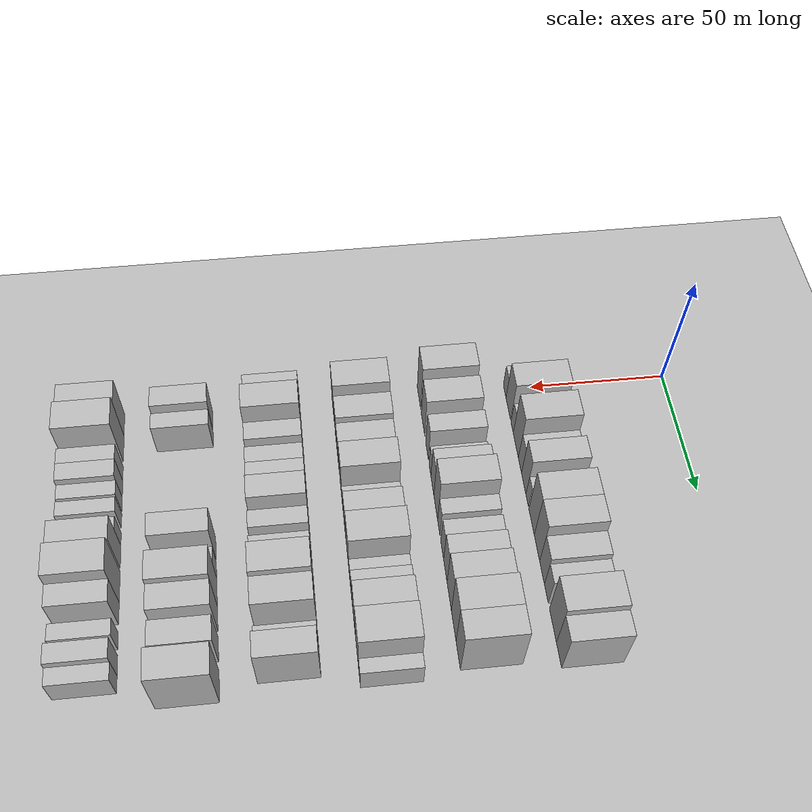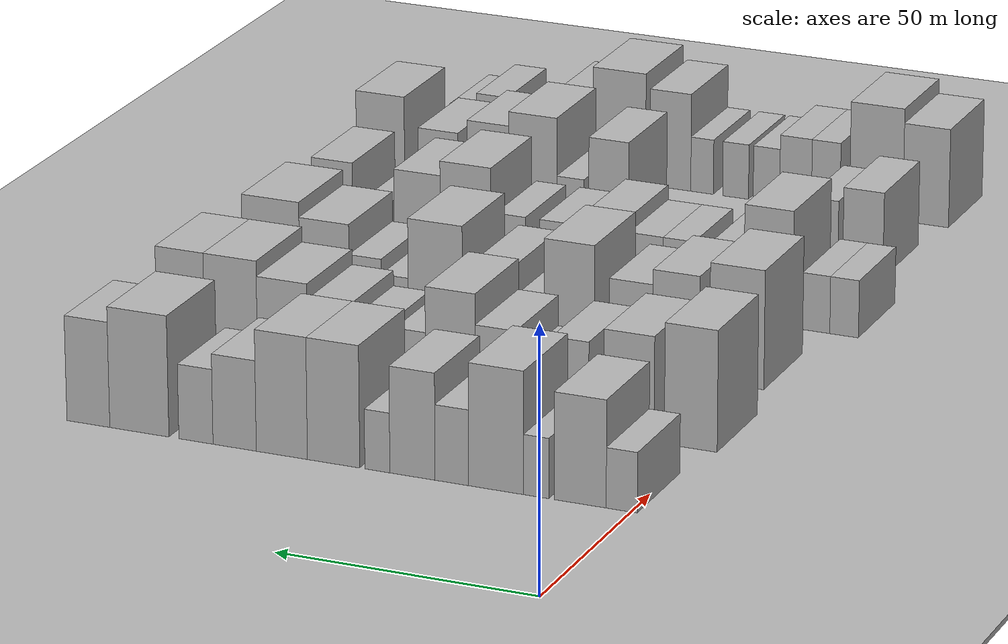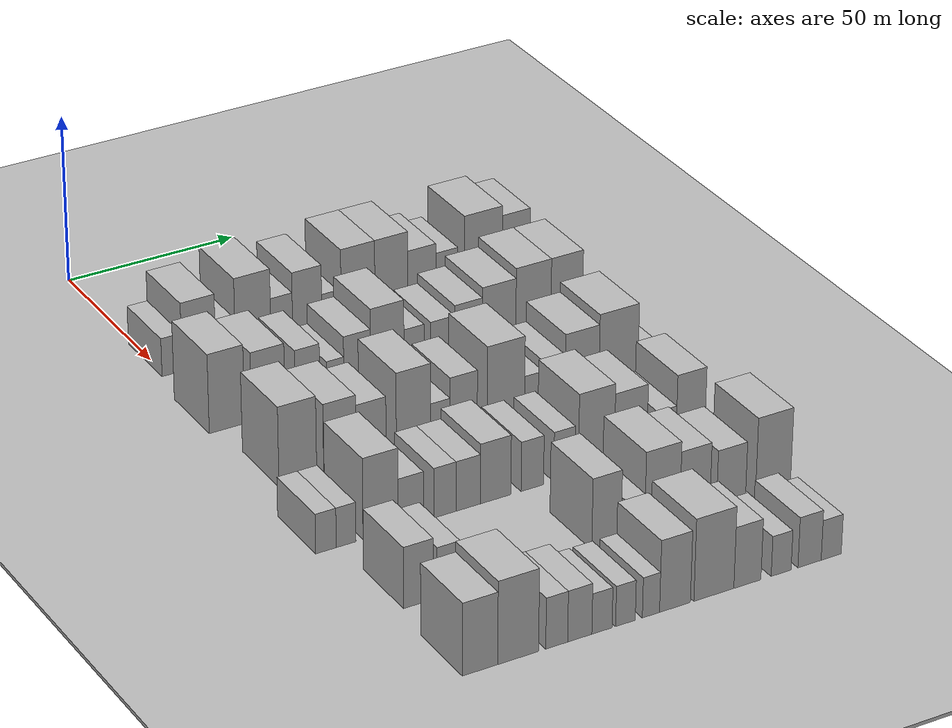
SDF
<sdf version="1.6">
 <world name="default">
  <include><name>ground_plane_1</name><uri>model://HANNAS_ground_plane</uri></include>
  <include>
   <name>ground_plane_2</name>
   <uri>model://HANNAS_ground_plane</uri>
   <pose>100 0 0  0 0 0</pose>
  </include>
  <model name="building_60">
   <static>1</static>
   <pose>50.0000 1.3358 0 0.000000 0.000000 0.000000</pose>
   <link name="link">
    <pose>0 0 6.00 0 0 0</pose>
    <collision name="collision"><geometry><box><size>20.0000 5.9601 12.0000</size></box></geometry></collision>
    <visual name="visual">
     <cast_shadows>0</cast_shadows>
     <geometry><box><size>20.0000 5.9601 12.0000</size></box></geometry>
     <material>
      <script>
       <uri>model://HANNAS_wall/materials/scripts</uri>
       <uri>model://HANNAS_wall/materials/textures</uri>
       <name>vrc/HANNAS_wall</name>
      </script>
     </material>
    </visual>
   </link>
  </model>
  <model name="building_61">
   <static>1</static>
   <pose>50.0000 9.3004 0 0.000000 0.000000 0.000000</pose>
   <link name="link">
    <pose>0 0 10.50 0 0 0</pose>
    <collision name="collision"><geometry><box><size>20.0000 9.9691 21.0000</size></box></geometry></collision>
    <visual name="visual">
     <cast_shadows>0</cast_shadows>
     <geometry><box><size>20.0000 9.9691 21.0000</size></box></geometry>
     <material>
      <script>
       <uri>model://HANNAS_wall/materials/scripts</uri>
       <uri>model://HANNAS_wall/materials/textures</uri>
       <name>vrc/HANNAS_wall</name>
      </script>
     </material>
    </visual>
   </link>
  </model>
  <model name="building_62">
   <static>1</static>
   <pose>50.0000 17.7154 0 0.000000 0.000000 0.000000</pose>
   <link name="link">
    <pose>0 0 6.00 0 0 0</pose>
    <collision name="collision"><geometry><box><size>20.0000 4.8610 12.0000</size></box></geometry></collision>
    <visual name="visual">
     <cast_shadows>0</cast_shadows>
     <geometry><box><size>20.0000 4.8610 12.0000</size></box></geometry>
     <material>
      <script>
       <uri>model://HANNAS_wall/materials/scripts</uri>
       <uri>model://HANNAS_wall/materials/textures</uri>
       <name>vrc/HANNAS_wall</name>
      </script>
     </material>
    </visual>
   </link>
  </model>
  <model name="building_63">
   <static>1</static>
   <pose>50.0000 25.4803 0 0.000000 0.000000 0.000000</pose>
   <link name="link">
    <pose>0 0 12.00 0 0 0</pose>
    <collision name="collision"><geometry><box><size>20.0000 10.6687 24.0000</size></box></geometry></collision>
    <visual name="visual">
     <cast_shadows>0</cast_shadows>
     <geometry><box><size>20.0000 10.6687 24.0000</size></box></geometry>
     <material>
      <script>
       <uri>model://HANNAS_wall/materials/scripts</uri>
       <uri>model://HANNAS_wall/materials/textures</uri>
       <name>vrc/HANNAS_wall</name>
      </script>
     </material>
    </visual>
   </link>
  </model>
  <model name="building_64">
   <static>1</static>
   <pose>50.0000 34.0839 0 0.000000 0.000000 0.000000</pose>
   <link name="link">
    <pose>0 0 7.50 0 0 0</pose>
    <collision name="collision"><geometry><box><size>20.0000 6.5386 15.0000</size></box></geometry></collision>
    <visual name="visual">
     <cast_shadows>0</cast_shadows>
     <geometry><box><size>20.0000 6.5386 15.0000</size></box></geometry>
     <material>
      <script>
       <uri>model://HANNAS_wall/materials/scripts</uri>
       <uri>model://HANNAS_wall/materials/textures</uri>
       <name>vrc/HANNAS_wall</name>
      </script>
     </material>
    </visual>
   </link>
  </model>
  <model name="building_65">
   <static>1</static>
   <pose>50.0000 41.7796 0 0.000000 0.000000 0.000000</pose>
   <link name="link">
    <pose>0 0 10.50 0 0 0</pose>
    <collision name="collision"><geometry><box><size>20.0000 8.8528 21.0000</size></box></geometry></collision>
    <visual name="visual">
     <cast_shadows>0</cast_shadows>
     <geometry><box><size>20.0000 8.8528 21.0000</size></box></geometry>
     <material>
      <script>
       <uri>model://HANNAS_wall/materials/scripts</uri>
       <uri>model://HANNAS_wall/materials/textures</uri>
       <name>vrc/HANNAS_wall</name>
      </script>
     </material>
    </visual>
   </link>
  </model>
  <model name="building_66">
   <static>1</static>
   <pose>50.0000 48.6634 0 0.000000 0.000000 0.000000</pose>
   <link name="link">
    <pose>0 0 6.00 0 0 0</pose>
    <collision name="collision"><geometry><box><size>20.0000 4.9147 12.0000</size></box></geometry></collision>
    <visual name="visual">
     <cast_shadows>0</cast_shadows>
     <geometry><box><size>20.0000 4.9147 12.0000</size></box></geometry>
     <material>
      <script>
       <uri>model://HANNAS_wall/materials/scripts</uri>
       <uri>model://HANNAS_wall/materials/textures</uri>
       <name>vrc/HANNAS_wall</name>
      </script>
     </material>
    </visual>
   </link>
  </model>
  <model name="building_67">
   <static>1</static>
   <pose>50.0000 57.2903 0 0.000000 0.000000 0.000000</pose>
   <link name="link">
    <pose>0 0 12.00 0 0 0</pose>
    <collision name="collision"><geometry><box><size>20.0000 10.3391 24.0000</size></box></geometry></collision>
    <visual name="visual">
     <cast_shadows>0</cast_shadows>
     <geometry><box><size>20.0000 10.3391 24.0000</size></box></geometry>
     <material>
      <script>
       <uri>model://HANNAS_wall/materials/scripts</uri>
       <uri>model://HANNAS_wall/materials/textures</uri>
       <name>vrc/HANNAS_wall</name>
      </script>
     </material>
    </visual>
   </link>
  </model>
  <model name="building_68">
   <static>1</static>
   <pose>50.0000 67.5436 0 0.000000 0.000000 0.000000</pose>
   <link name="link">
    <pose>0 0 12.00 0 0 0</pose>
    <collision name="collision"><geometry><box><size>20.0000 10.1675 24.0000</size></box></geometry></collision>
    <visual name="visual">
     <cast_shadows>0</cast_shadows>
     <geometry><box><size>20.0000 10.1675 24.0000</size></box></geometry>
     <material>
      <script>
       <uri>model://HANNAS_wall/materials/scripts</uri>
       <uri>model://HANNAS_wall/materials/textures</uri>
       <name>vrc/HANNAS_wall</name>
      </script>
     </material>
    </visual>
   </link>
  </model>
  <model name="building_69">
   <static>1</static>
   <pose>50.0000 76.9611 0 0.000000 0.000000 0.000000</pose>
   <link name="link">
    <pose>0 0 9.00 0 0 0</pose>
    <collision name="collision"><geometry><box><size>20.0000 8.6673 18.0000</size></box></geometry></collision>
    <visual name="visual">
     <cast_shadows>0</cast_shadows>
     <geometry><box><size>20.0000 8.6673 18.0000</size></box></geometry>
     <material>
      <script>
       <uri>model://HANNAS_wall/materials/scripts</uri>
       <uri>model://HANNAS_wall/materials/textures</uri>
       <name>vrc/HANNAS_wall</name>
      </script>
     </material>
    </visual>
   </link>
  </model>
  <model name="building_70">
   <static>1</static>
   <pose>50.0000 84.7303 0 0.000000 0.000000 0.000000</pose>
   <link name="link">
    <pose>0 0 7.50 0 0 0</pose>
    <collision name="collision"><geometry><box><size>20.0000 6.8712 15.0000</size></box></geometry></collision>
    <visual name="visual">
     <cast_shadows>0</cast_shadows>
     <geometry><box><size>20.0000 6.8712 15.0000</size></box></geometry>
     <material>
      <script>
       <uri>model://HANNAS_wall/materials/scripts</uri>
       <uri>model://HANNAS_wall/materials/textures</uri>
       <name>vrc/HANNAS_wall</name>
      </script>
     </material>
    </visual>
   </link>
  </model>
  <model name="building_71">
   <static>1</static>
   <pose>50.0000 96.1594 0 0.000000 0.000000 0.000000</pose>
   <link name="link">
    <pose>0 0 12.00 0 0 0</pose>
    <collision name="collision"><geometry><box><size>20.0000 11.9871 24.0000</size></box></geometry></collision>
    <visual name="visual">
     <cast_shadows>0</cast_shadows>
     <geometry><box><size>20.0000 11.9871 24.0000</size></box></geometry>
     <material>
      <script>
       <uri>model://HANNAS_wall/materials/scripts</uri>
       <uri>model://HANNAS_wall/materials/textures</uri>
       <name>vrc/HANNAS_wall</name>
      </script>
     </material>
    </visual>
   </link>
  </model>
  <model name="building_72">
   <static>1</static>
   <pose>50.0000 106.5180 0 0.000000 0.000000 0.000000</pose>
   <link name="link">
    <pose>0 0 10.50 0 0 0</pose>
    <collision name="collision"><geometry><box><size>20.0000 8.7301 21.0000</size></box></geometry></collision>
    <visual name="visual">
     <cast_shadows>0</cast_shadows>
     <geometry><box><size>20.0000 8.7301 21.0000</size></box></geometry>
     <material>
      <script>
       <uri>model://HANNAS_wall/materials/scripts</uri>
       <uri>model://HANNAS_wall/materials/textures</uri>
       <name>vrc/HANNAS_wall</name>
      </script>
     </material>
    </visual>
   </link>
  </model>
  <model name="building_177">
   <static>1</static>
   <pose>82.0000 1.0692 0 0.000000 0.000000 0.000000</pose>
   <link name="link">
    <pose>0 0 12.00 0 0 0</pose>
    <collision name="collision"><geometry><box><size>20.0000 10.2635 24.0000</size></box></geometry></collision>
    <visual name="visual">
     <cast_shadows>0</cast_shadows>
     <geometry><box><size>20.0000 10.2635 24.0000</size></box></geometry>
     <material>
      <script>
       <uri>model://HANNAS_wall/materials/scripts</uri>
       <uri>model://HANNAS_wall/materials/textures</uri>
       <name>vrc/HANNAS_wall</name>
      </script>
     </material>
    </visual>
   </link>
  </model>
  <model name="building_178">
   <static>1</static>
   <pose>82.0000 13.1112 0 0.000000 0.000000 0.000000</pose>
   <link name="link">
    <pose>0 0 10.50 0 0 0</pose>
    <collision name="collision"><geometry><box><size>20.0000 9.8205 21.0000</size></box></geometry></collision>
    <visual name="visual">
     <cast_shadows>0</cast_shadows>
     <geometry><box><size>20.0000 9.8205 21.0000</size></box></geometry>
     <material>
      <script>
       <uri>model://HANNAS_wall/materials/scripts</uri>
       <uri>model://HANNAS_wall/materials/textures</uri>
       <name>vrc/HANNAS_wall</name>
      </script>
     </material>
    </visual>
   </link>
  </model>
  <model name="building_179">
   <static>1</static>
   <pose>82.0000 24.6729 0 0.000000 0.000000 0.000000</pose>
   <link name="link">
    <pose>0 0 9.00 0 0 0</pose>
    <collision name="collision"><geometry><box><size>20.0000 7.3029 18.0000</size></box></geometry></collision>
    <visual name="visual">
     <cast_shadows>0</cast_shadows>
     <geometry><box><size>20.0000 7.3029 18.0000</size></box></geometry>
     <material>
      <script>
       <uri>model://HANNAS_wall/materials/scripts</uri>
       <uri>model://HANNAS_wall/materials/textures</uri>
       <name>vrc/HANNAS_wall</name>
      </script>
     </material>
    </visual>
   </link>
  </model>
  <model name="building_180">
   <static>1</static>
   <pose>82.0000 32.8890 0 0.000000 0.000000 0.000000</pose>
   <link name="link">
    <pose>0 0 6.00 0 0 0</pose>
    <collision name="collision"><geometry><box><size>20.0000 5.1294 12.0000</size></box></geometry></collision>
    <visual name="visual">
     <cast_shadows>0</cast_shadows>
     <geometry><box><size>20.0000 5.1294 12.0000</size></box></geometry>
     <material>
      <script>
       <uri>model://HANNAS_wall/materials/scripts</uri>
       <uri>model://HANNAS_wall/materials/textures</uri>
       <name>vrc/HANNAS_wall</name>
      </script>
     </material>
    </visual>
   </link>
  </model>
  <model name="building_181">
   <static>1</static>
   <pose>82.0000 39.4639 0 0.000000 0.000000 0.000000</pose>
   <link name="link">
    <pose>0 0 9.00 0 0 0</pose>
    <collision name="collision"><geometry><box><size>20.0000 8.0204 18.0000</size></box></geometry></collision>
    <visual name="visual">
     <cast_shadows>0</cast_shadows>
     <geometry><box><size>20.0000 8.0204 18.0000</size></box></geometry>
     <material>
      <script>
       <uri>model://HANNAS_wall/materials/scripts</uri>
       <uri>model://HANNAS_wall/materials/textures</uri>
       <name>vrc/HANNAS_wall</name>
      </script>
     </material>
    </visual>
   </link>
  </model>
  <model name="building_182">
   <static>1</static>
   <pose>82.0000 48.4613 0 0.000000 0.000000 0.000000</pose>
   <link name="link">
    <pose>0 0 12.00 0 0 0</pose>
    <collision name="collision"><geometry><box><size>20.0000 9.9743 24.0000</size></box></geometry></collision>
    <visual name="visual">
     <cast_shadows>0</cast_shadows>
     <geometry><box><size>20.0000 9.9743 24.0000</size></box></geometry>
     <material>
      <script>
       <uri>model://HANNAS_wall/materials/scripts</uri>
       <uri>model://HANNAS_wall/materials/textures</uri>
       <name>vrc/HANNAS_wall</name>
      </script>
     </material>
    </visual>
   </link>
  </model>
  <model name="building_183">
   <static>1</static>
   <pose>82.0000 56.4696 0 0.000000 0.000000 0.000000</pose>
   <link name="link">
    <pose>0 0 7.50 0 0 0</pose>
    <collision name="collision"><geometry><box><size>20.0000 6.0425 15.0000</size></box></geometry></collision>
    <visual name="visual">
     <cast_shadows>0</cast_shadows>
     <geometry><box><size>20.0000 6.0425 15.0000</size></box></geometry>
     <material>
      <script>
       <uri>model://HANNAS_wall/materials/scripts</uri>
       <uri>model://HANNAS_wall/materials/textures</uri>
       <name>vrc/HANNAS_wall</name>
      </script>
     </material>
    </visual>
   </link>
  </model>
  <model name="building_184">
   <static>1</static>
   <pose>82.0000 65.1560 0 0.000000 0.000000 0.000000</pose>
   <link name="link">
    <pose>0 0 7.50 0 0 0</pose>
    <collision name="collision"><geometry><box><size>20.0000 7.3303 15.0000</size></box></geometry></collision>
    <visual name="visual">
     <cast_shadows>0</cast_shadows>
     <geometry><box><size>20.0000 7.3303 15.0000</size></box></geometry>
     <material>
      <script>
       <uri>model://HANNAS_wall/materials/scripts</uri>
       <uri>model://HANNAS_wall/materials/textures</uri>
       <name>vrc/HANNAS_wall</name>
      </script>
     </material>
    </visual>
   </link>
  </model>
  <model name="building_185">
   <static>1</static>
   <pose>82.0000 73.0448 0 0.000000 0.000000 0.000000</pose>
   <link name="link">
    <pose>0 0 9.00 0 0 0</pose>
    <collision name="collision"><geometry><box><size>20.0000 8.4473 18.0000</size></box></geometry></collision>
    <visual name="visual">
     <cast_shadows>0</cast_shadows>
     <geometry><box><size>20.0000 8.4473 18.0000</size></box></geometry>
     <material>
      <script>
       <uri>model://HANNAS_wall/materials/scripts</uri>
       <uri>model://HANNAS_wall/materials/textures</uri>
       <name>vrc/HANNAS_wall</name>
      </script>
     </material>
    </visual>
   </link>
  </model>
  <model name="building_186">
   <static>1</static>
   <pose>82.0000 82.4080 0 0.000000 0.000000 0.000000</pose>
   <link name="link">
    <pose>0 0 10.50 0 0 0</pose>
    <collision name="collision"><geometry><box><size>20.0000 10.2791 21.0000</size></box></geometry></collision>
    <visual name="visual">
     <cast_shadows>0</cast_shadows>
     <geometry><box><size>20.0000 10.2791 21.0000</size></box></geometry>
     <material>
      <script>
       <uri>model://HANNAS_wall/materials/scripts</uri>
       <uri>model://HANNAS_wall/materials/textures</uri>
       <name>vrc/HANNAS_wall</name>
      </script>
     </material>
    </visual>
   </link>
  </model>
  <model name="building_187">
   <static>1</static>
   <pose>82.0000 92.9784 0 0.000000 0.000000 0.000000</pose>
   <link name="link">
    <pose>0 0 12.00 0 0 0</pose>
    <collision name="collision"><geometry><box><size>20.0000 10.8617 24.0000</size></box></geometry></collision>
    <visual name="visual">
     <cast_shadows>0</cast_shadows>
     <geometry><box><size>20.0000 10.8617 24.0000</size></box></geometry>
     <material>
      <script>
       <uri>model://HANNAS_wall/materials/scripts</uri>
       <uri>model://HANNAS_wall/materials/textures</uri>
       <name>vrc/HANNAS_wall</name>
      </script>
     </material>
    </visual>
   </link>
  </model>
  <model name="building_188">
   <static>1</static>
   <pose>82.0000 103.3488 0 0.000000 0.000000 0.000000</pose>
   <link name="link">
    <pose>0 0 12.00 0 0 0</pose>
    <collision name="collision"><geometry><box><size>20.0000 9.8790 24.0000</size></box></geometry></collision>
    <visual name="visual">
     <cast_shadows>0</cast_shadows>
     <geometry><box><size>20.0000 9.8790 24.0000</size></box></geometry>
     <material>
      <script>
       <uri>model://HANNAS_wall/materials/scripts</uri>
       <uri>model://HANNAS_wall/materials/textures</uri>
       <name>vrc/HANNAS_wall</name>
      </script>
     </material>
    </visual>
   </link>
  </model>
  <model name="building_294">
   <static>1</static>
   <pose>114.0000 4.7208 0 0.000000 0.000000 0.000000</pose>
   <link name="link">
    <pose>0 0 12.00 0 0 0</pose>
    <collision name="collision"><geometry><box><size>20.0000 10.8109 24.0000</size></box></geometry></collision>
    <visual name="visual">
     <cast_shadows>0</cast_shadows>
     <geometry><box><size>20.0000 10.8109 24.0000</size></box></geometry>
     <material>
      <script>
       <uri>model://HANNAS_wall/materials/scripts</uri>
       <uri>model://HANNAS_wall/materials/textures</uri>
       <name>vrc/HANNAS_wall</name>
      </script>
     </material>
    </visual>
   </link>
  </model>
  <model name="building_295">
   <static>1</static>
   <pose>114.0000 16.8102 0 0.000000 0.000000 0.000000</pose>
   <link name="link">
    <pose>0 0 10.50 0 0 0</pose>
    <collision name="collision"><geometry><box><size>20.0000 9.3680 21.0000</size></box></geometry></collision>
    <visual name="visual">
     <cast_shadows>0</cast_shadows>
     <geometry><box><size>20.0000 9.3680 21.0000</size></box></geometry>
     <material>
      <script>
       <uri>model://HANNAS_wall/materials/scripts</uri>
       <uri>model://HANNAS_wall/materials/textures</uri>
       <name>vrc/HANNAS_wall</name>
      </script>
     </material>
    </visual>
   </link>
  </model>
  <model name="building_296">
   <static>1</static>
   <pose>114.0000 25.8664 0 0.000000 0.000000 0.000000</pose>
   <link name="link">
    <pose>0 0 9.00 0 0 0</pose>
    <collision name="collision"><geometry><box><size>20.0000 8.7443 18.0000</size></box></geometry></collision>
    <visual name="visual">
     <cast_shadows>0</cast_shadows>
     <geometry><box><size>20.0000 8.7443 18.0000</size></box></geometry>
     <material>
      <script>
       <uri>model://HANNAS_wall/materials/scripts</uri>
       <uri>model://HANNAS_wall/materials/textures</uri>
       <name>vrc/HANNAS_wall</name>
      </script>
     </material>
    </visual>
   </link>
  </model>
  <model name="building_297">
   <static>1</static>
   <pose>114.0000 38.3132 0 0.000000 0.000000 0.000000</pose>
   <link name="link">
    <pose>0 0 12.00 0 0 0</pose>
    <collision name="collision"><geometry><box><size>20.0000 10.1492 24.0000</size></box></geometry></collision>
    <visual name="visual">
     <cast_shadows>0</cast_shadows>
     <geometry><box><size>20.0000 10.1492 24.0000</size></box></geometry>
     <material>
      <script>
       <uri>model://HANNAS_wall/materials/scripts</uri>
       <uri>model://HANNAS_wall/materials/textures</uri>
       <name>vrc/HANNAS_wall</name>
      </script>
     </material>
    </visual>
   </link>
  </model>
  <model name="building_298">
   <static>1</static>
   <pose>114.0000 46.2140 0 0.000000 0.000000 0.000000</pose>
   <link name="link">
    <pose>0 0 6.00 0 0 0</pose>
    <collision name="collision"><geometry><box><size>20.0000 5.6524 12.0000</size></box></geometry></collision>
    <visual name="visual">
     <cast_shadows>0</cast_shadows>
     <geometry><box><size>20.0000 5.6524 12.0000</size></box></geometry>
     <material>
      <script>
       <uri>model://HANNAS_wall/materials/scripts</uri>
       <uri>model://HANNAS_wall/materials/textures</uri>
       <name>vrc/HANNAS_wall</name>
      </script>
     </material>
    </visual>
   </link>
  </model>
  <model name="building_299">
   <static>1</static>
   <pose>114.0000 53.0847 0 0.000000 0.000000 0.000000</pose>
   <link name="link">
    <pose>0 0 9.00 0 0 0</pose>
    <collision name="collision"><geometry><box><size>20.0000 8.0892 18.0000</size></box></geometry></collision>
    <visual name="visual">
     <cast_shadows>0</cast_shadows>
     <geometry><box><size>20.0000 8.0892 18.0000</size></box></geometry>
     <material>
      <script>
       <uri>model://HANNAS_wall/materials/scripts</uri>
       <uri>model://HANNAS_wall/materials/textures</uri>
       <name>vrc/HANNAS_wall</name>
      </script>
     </material>
    </visual>
   </link>
  </model>
  <model name="building_300">
   <static>1</static>
   <pose>114.0000 65.7095 0 0.000000 0.000000 0.000000</pose>
   <link name="link">
    <pose>0 0 12.00 0 0 0</pose>
    <collision name="collision"><geometry><box><size>20.0000 11.1603 24.0000</size></box></geometry></collision>
    <visual name="visual">
     <cast_shadows>0</cast_shadows>
     <geometry><box><size>20.0000 11.1603 24.0000</size></box></geometry>
     <material>
      <script>
       <uri>model://HANNAS_wall/materials/scripts</uri>
       <uri>model://HANNAS_wall/materials/textures</uri>
       <name>vrc/HANNAS_wall</name>
      </script>
     </material>
    </visual>
   </link>
  </model>
  <model name="building_301">
   <static>1</static>
   <pose>114.0000 74.0676 0 0.000000 0.000000 0.000000</pose>
   <link name="link">
    <pose>0 0 6.00 0 0 0</pose>
    <collision name="collision"><geometry><box><size>20.0000 5.5559 12.0000</size></box></geometry></collision>
    <visual name="visual">
     <cast_shadows>0</cast_shadows>
     <geometry><box><size>20.0000 5.5559 12.0000</size></box></geometry>
     <material>
      <script>
       <uri>model://HANNAS_wall/materials/scripts</uri>
       <uri>model://HANNAS_wall/materials/textures</uri>
       <name>vrc/HANNAS_wall</name>
      </script>
     </material>
    </visual>
   </link>
  </model>
  <model name="building_302">
   <static>1</static>
   <pose>114.0000 80.1811 0 0.000000 0.000000 0.000000</pose>
   <link name="link">
    <pose>0 0 7.50 0 0 0</pose>
    <collision name="collision"><geometry><box><size>20.0000 6.6711 15.0000</size></box></geometry></collision>
    <visual name="visual">
     <cast_shadows>0</cast_shadows>
     <geometry><box><size>20.0000 6.6711 15.0000</size></box></geometry>
     <material>
      <script>
       <uri>model://HANNAS_wall/materials/scripts</uri>
       <uri>model://HANNAS_wall/materials/textures</uri>
       <name>vrc/HANNAS_wall</name>
      </script>
     </material>
    </visual>
   </link>
  </model>
  <model name="building_303">
   <static>1</static>
   <pose>114.0000 88.6898 0 0.000000 0.000000 0.000000</pose>
   <link name="link">
    <pose>0 0 10.50 0 0 0</pose>
    <collision name="collision"><geometry><box><size>20.0000 10.3462 21.0000</size></box></geometry></collision>
    <visual name="visual">
     <cast_shadows>0</cast_shadows>
     <geometry><box><size>20.0000 10.3462 21.0000</size></box></geometry>
     <material>
      <script>
       <uri>model://HANNAS_wall/materials/scripts</uri>
       <uri>model://HANNAS_wall/materials/textures</uri>
       <name>vrc/HANNAS_wall</name>
      </script>
     </material>
    </visual>
   </link>
  </model>
  <model name="building_304">
   <static>1</static>
   <pose>114.0000 99.8601 0 0.000000 0.000000 0.000000</pose>
   <link name="link">
    <pose>0 0 12.00 0 0 0</pose>
    <collision name="collision"><geometry><box><size>20.0000 11.9943 24.0000</size></box></geometry></collision>
    <visual name="visual">
     <cast_shadows>0</cast_shadows>
     <geometry><box><size>20.0000 11.9943 24.0000</size></box></geometry>
     <material>
      <script>
       <uri>model://HANNAS_wall/materials/scripts</uri>
       <uri>model://HANNAS_wall/materials/textures</uri>
       <name>vrc/HANNAS_wall</name>
      </script>
     </material>
    </visual>
   </link>
  </model>
  <model name="building_305">
   <static>1</static>
   <pose>114.0000 108.3665 0 0.000000 0.000000 0.000000</pose>
   <link name="link">
    <pose>0 0 6.00 0 0 0</pose>
    <collision name="collision"><geometry><box><size>20.0000 5.0187 12.0000</size></box></geometry></collision>
    <visual name="visual">
     <cast_shadows>0</cast_shadows>
     <geometry><box><size>20.0000 5.0187 12.0000</size></box></geometry>
     <material>
      <script>
       <uri>model://HANNAS_wall/materials/scripts</uri>
       <uri>model://HANNAS_wall/materials/textures</uri>
       <name>vrc/HANNAS_wall</name>
      </script>
     </material>
    </visual>
   </link>
  </model>
  <model name="building_416">
   <static>1</static>
   <pose>146.0000 -4.5435 0 0.000000 0.000000 0.000000</pose>
   <link name="link">
    <pose>0 0 6.00 0 0 0</pose>
    <collision name="collision"><geometry><box><size>20.0000 5.7785 12.0000</size></box></geometry></collision>
    <visual name="visual">
     <cast_shadows>0</cast_shadows>
     <geometry><box><size>20.0000 5.7785 12.0000</size></box></geometry>
     <material>
      <script>
       <uri>model://HANNAS_wall/materials/scripts</uri>
       <uri>model://HANNAS_wall/materials/textures</uri>
       <name>vrc/HANNAS_wall</name>
      </script>
     </material>
    </visual>
   </link>
  </model>
  <model name="building_417">
   <static>1</static>
   <pose>146.0000 1.1185 0 0.000000 0.000000 0.000000</pose>
   <link name="link">
    <pose>0 0 6.00 0 0 0</pose>
    <collision name="collision"><geometry><box><size>20.0000 5.5456 12.0000</size></box></geometry></collision>
    <visual name="visual">
     <cast_shadows>0</cast_shadows>
     <geometry><box><size>20.0000 5.5456 12.0000</size></box></geometry>
     <material>
      <script>
       <uri>model://HANNAS_wall/materials/scripts</uri>
       <uri>model://HANNAS_wall/materials/textures</uri>
       <name>vrc/HANNAS_wall</name>
      </script>
     </material>
    </visual>
   </link>
  </model>
  <model name="building_418">
   <static>1</static>
   <pose>146.0000 10.8607 0 0.000000 0.000000 0.000000</pose>
   <link name="link">
    <pose>0 0 12.00 0 0 0</pose>
    <collision name="collision"><geometry><box><size>20.0000 9.9389 24.0000</size></box></geometry></collision>
    <visual name="visual">
     <cast_shadows>0</cast_shadows>
     <geometry><box><size>20.0000 9.9389 24.0000</size></box></geometry>
     <material>
      <script>
       <uri>model://HANNAS_wall/materials/scripts</uri>
       <uri>model://HANNAS_wall/materials/textures</uri>
       <name>vrc/HANNAS_wall</name>
      </script>
     </material>
    </visual>
   </link>
  </model>
  <model name="building_419">
   <static>1</static>
   <pose>146.0000 19.4415 0 0.000000 0.000000 0.000000</pose>
   <link name="link">
    <pose>0 0 7.50 0 0 0</pose>
    <collision name="collision"><geometry><box><size>20.0000 7.2227 15.0000</size></box></geometry></collision>
    <visual name="visual">
     <cast_shadows>0</cast_shadows>
     <geometry><box><size>20.0000 7.2227 15.0000</size></box></geometry>
     <material>
      <script>
       <uri>model://HANNAS_wall/materials/scripts</uri>
       <uri>model://HANNAS_wall/materials/textures</uri>
       <name>vrc/HANNAS_wall</name>
      </script>
     </material>
    </visual>
   </link>
  </model>
  <model name="building_420">
   <static>1</static>
   <pose>146.0000 29.2246 0 0.000000 0.000000 0.000000</pose>
   <link name="link">
    <pose>0 0 7.50 0 0 0</pose>
    <collision name="collision"><geometry><box><size>20.0000 6.3434 15.0000</size></box></geometry></collision>
    <visual name="visual">
     <cast_shadows>0</cast_shadows>
     <geometry><box><size>20.0000 6.3434 15.0000</size></box></geometry>
     <material>
      <script>
       <uri>model://HANNAS_wall/materials/scripts</uri>
       <uri>model://HANNAS_wall/materials/textures</uri>
       <name>vrc/HANNAS_wall</name>
      </script>
     </material>
    </visual>
   </link>
  </model>
  <model name="building_421">
   <static>1</static>
   <pose>146.0000 35.9295 0 0.000000 0.000000 0.000000</pose>
   <link name="link">
    <pose>0 0 7.50 0 0 0</pose>
    <collision name="collision"><geometry><box><size>20.0000 7.0665 15.0000</size></box></geometry></collision>
    <visual name="visual">
     <cast_shadows>0</cast_shadows>
     <geometry><box><size>20.0000 7.0665 15.0000</size></box></geometry>
     <material>
      <script>
       <uri>model://HANNAS_wall/materials/scripts</uri>
       <uri>model://HANNAS_wall/materials/textures</uri>
       <name>vrc/HANNAS_wall</name>
      </script>
     </material>
    </visual>
   </link>
  </model>
  <model name="building_422">
   <static>1</static>
   <pose>146.0000 43.9070 0 0.000000 0.000000 0.000000</pose>
   <link name="link">
    <pose>0 0 9.00 0 0 0</pose>
    <collision name="collision"><geometry><box><size>20.0000 8.8885 18.0000</size></box></geometry></collision>
    <visual name="visual">
     <cast_shadows>0</cast_shadows>
     <geometry><box><size>20.0000 8.8885 18.0000</size></box></geometry>
     <material>
      <script>
       <uri>model://HANNAS_wall/materials/scripts</uri>
       <uri>model://HANNAS_wall/materials/textures</uri>
       <name>vrc/HANNAS_wall</name>
      </script>
     </material>
    </visual>
   </link>
  </model>
  <model name="building_423">
   <static>1</static>
   <pose>146.0000 54.6436 0 0.000000 0.000000 0.000000</pose>
   <link name="link">
    <pose>0 0 7.50 0 0 0</pose>
    <collision name="collision"><geometry><box><size>20.0000 6.5847 15.0000</size></box></geometry></collision>
    <visual name="visual">
     <cast_shadows>0</cast_shadows>
     <geometry><box><size>20.0000 6.5847 15.0000</size></box></geometry>
     <material>
      <script>
       <uri>model://HANNAS_wall/materials/scripts</uri>
       <uri>model://HANNAS_wall/materials/textures</uri>
       <name>vrc/HANNAS_wall</name>
      </script>
     </material>
    </visual>
   </link>
  </model>
  <model name="building_424">
   <static>1</static>
   <pose>146.0000 64.0469 0 0.000000 0.000000 0.000000</pose>
   <link name="link">
    <pose>0 0 7.50 0 0 0</pose>
    <collision name="collision"><geometry><box><size>20.0000 6.2219 15.0000</size></box></geometry></collision>
    <visual name="visual">
     <cast_shadows>0</cast_shadows>
     <geometry><box><size>20.0000 6.2219 15.0000</size></box></geometry>
     <material>
      <script>
       <uri>model://HANNAS_wall/materials/scripts</uri>
       <uri>model://HANNAS_wall/materials/textures</uri>
       <name>vrc/HANNAS_wall</name>
      </script>
     </material>
    </visual>
   </link>
  </model>
  <model name="building_425">
   <static>1</static>
   <pose>146.0000 73.5076 0 0.000000 0.000000 0.000000</pose>
   <link name="link">
    <pose>0 0 12.00 0 0 0</pose>
    <collision name="collision"><geometry><box><size>20.0000 10.6996 24.0000</size></box></geometry></collision>
    <visual name="visual">
     <cast_shadows>0</cast_shadows>
     <geometry><box><size>20.0000 10.6996 24.0000</size></box></geometry>
     <material>
      <script>
       <uri>model://HANNAS_wall/materials/scripts</uri>
       <uri>model://HANNAS_wall/materials/textures</uri>
       <name>vrc/HANNAS_wall</name>
      </script>
     </material>
    </visual>
   </link>
  </model>
  <model name="building_426">
   <static>1</static>
   <pose>146.0000 83.7499 0 0.000000 0.000000 0.000000</pose>
   <link name="link">
    <pose>0 0 10.50 0 0 0</pose>
    <collision name="collision"><geometry><box><size>20.0000 9.7848 21.0000</size></box></geometry></collision>
    <visual name="visual">
     <cast_shadows>0</cast_shadows>
     <geometry><box><size>20.0000 9.7848 21.0000</size></box></geometry>
     <material>
      <script>
       <uri>model://HANNAS_wall/materials/scripts</uri>
       <uri>model://HANNAS_wall/materials/textures</uri>
       <name>vrc/HANNAS_wall</name>
      </script>
     </material>
    </visual>
   </link>
  </model>
  <model name="building_427">
   <static>1</static>
   <pose>146.0000 94.5490 0 0.000000 0.000000 0.000000</pose>
   <link name="link">
    <pose>0 0 6.00 0 0 0</pose>
    <collision name="collision"><geometry><box><size>20.0000 5.8135 12.0000</size></box></geometry></collision>
    <visual name="visual">
     <cast_shadows>0</cast_shadows>
     <geometry><box><size>20.0000 5.8135 12.0000</size></box></geometry>
     <material>
      <script>
       <uri>model://HANNAS_wall/materials/scripts</uri>
       <uri>model://HANNAS_wall/materials/textures</uri>
       <name>vrc/HANNAS_wall</name>
      </script>
     </material>
    </visual>
   </link>
  </model>
  <model name="building_428">
   <static>1</static>
   <pose>146.0000 101.8516 0 0.000000 0.000000 0.000000</pose>
   <link name="link">
    <pose>0 0 10.50 0 0 0</pose>
    <collision name="collision"><geometry><box><size>20.0000 8.7918 21.0000</size></box></geometry></collision>
    <visual name="visual">
     <cast_shadows>0</cast_shadows>
     <geometry><box><size>20.0000 8.7918 21.0000</size></box></geometry>
     <material>
      <script>
       <uri>model://HANNAS_wall/materials/scripts</uri>
       <uri>model://HANNAS_wall/materials/textures</uri>
       <name>vrc/HANNAS_wall</name>
      </script>
     </material>
    </visual>
   </link>
  </model>
  <model name="building_533">
   <static>1</static>
   <pose>178.0000 3.5826 0 0.000000 0.000000 0.000000</pose>
   <link name="link">
    <pose>0 0 9.00 0 0 0</pose>
    <collision name="collision"><geometry><box><size>20.0000 8.3185 18.0000</size></box></geometry></collision>
    <visual name="visual">
     <cast_shadows>0</cast_shadows>
     <geometry><box><size>20.0000 8.3185 18.0000</size></box></geometry>
     <material>
      <script>
       <uri>model://HANNAS_wall/materials/scripts</uri>
       <uri>model://HANNAS_wall/materials/textures</uri>
       <name>vrc/HANNAS_wall</name>
      </script>
     </material>
    </visual>
   </link>
  </model>
  <model name="building_534">
   <static>1</static>
   <pose>178.0000 11.9623 0 0.000000 0.000000 0.000000</pose>
   <link name="link">
    <pose>0 0 7.50 0 0 0</pose>
    <collision name="collision"><geometry><box><size>20.0000 6.4408 15.0000</size></box></geometry></collision>
    <visual name="visual">
     <cast_shadows>0</cast_shadows>
     <geometry><box><size>20.0000 6.4408 15.0000</size></box></geometry>
     <material>
      <script>
       <uri>model://HANNAS_wall/materials/scripts</uri>
       <uri>model://HANNAS_wall/materials/textures</uri>
       <name>vrc/HANNAS_wall</name>
      </script>
     </material>
    </visual>
   </link>
  </model>
  <model name="building_535">
   <static>1</static>
   <pose>178.0000 56.8713 0 0.000000 0.000000 0.000000</pose>
   <link name="link">
    <pose>0 0 10.50 0 0 0</pose>
    <collision name="collision"><geometry><box><size>20.0000 8.4590 21.0000</size></box></geometry></collision>
    <visual name="visual">
     <cast_shadows>0</cast_shadows>
     <geometry><box><size>20.0000 8.4590 21.0000</size></box></geometry>
     <material>
      <script>
       <uri>model://HANNAS_wall/materials/scripts</uri>
       <uri>model://HANNAS_wall/materials/textures</uri>
       <name>vrc/HANNAS_wall</name>
      </script>
     </material>
    </visual>
   </link>
  </model>
  <model name="building_536">
   <static>1</static>
   <pose>178.0000 65.0272 0 0.000000 0.000000 0.000000</pose>
   <link name="link">
    <pose>0 0 6.00 0 0 0</pose>
    <collision name="collision"><geometry><box><size>20.0000 5.8528 12.0000</size></box></geometry></collision>
    <visual name="visual">
     <cast_shadows>0</cast_shadows>
     <geometry><box><size>20.0000 5.8528 12.0000</size></box></geometry>
     <material>
      <script>
       <uri>model://HANNAS_wall/materials/scripts</uri>
       <uri>model://HANNAS_wall/materials/textures</uri>
       <name>vrc/HANNAS_wall</name>
      </script>
     </material>
    </visual>
   </link>
  </model>
  <model name="building_537">
   <static>1</static>
   <pose>178.0000 73.1063 0 0.000000 0.000000 0.000000</pose>
   <link name="link">
    <pose>0 0 12.00 0 0 0</pose>
    <collision name="collision"><geometry><box><size>20.0000 10.3052 24.0000</size></box></geometry></collision>
    <visual name="visual">
     <cast_shadows>0</cast_shadows>
     <geometry><box><size>20.0000 10.3052 24.0000</size></box></geometry>
     <material>
      <script>
       <uri>model://HANNAS_wall/materials/scripts</uri>
       <uri>model://HANNAS_wall/materials/textures</uri>
       <name>vrc/HANNAS_wall</name>
      </script>
     </material>
    </visual>
   </link>
  </model>
  <model name="building_538">
   <static>1</static>
   <pose>178.0000 82.7142 0 0.000000 0.000000 0.000000</pose>
   <link name="link">
    <pose>0 0 10.50 0 0 0</pose>
    <collision name="collision"><geometry><box><size>20.0000 8.9107 21.0000</size></box></geometry></collision>
    <visual name="visual">
     <cast_shadows>0</cast_shadows>
     <geometry><box><size>20.0000 8.9107 21.0000</size></box></geometry>
     <material>
      <script>
       <uri>model://HANNAS_wall/materials/scripts</uri>
       <uri>model://HANNAS_wall/materials/textures</uri>
       <name>vrc/HANNAS_wall</name>
      </script>
     </material>
    </visual>
   </link>
  </model>
  <model name="building_539">
   <static>1</static>
   <pose>178.0000 93.4892 0 0.000000 0.000000 0.000000</pose>
   <link name="link">
    <pose>0 0 9.00 0 0 0</pose>
    <collision name="collision"><geometry><box><size>20.0000 8.6392 18.0000</size></box></geometry></collision>
    <visual name="visual">
     <cast_shadows>0</cast_shadows>
     <geometry><box><size>20.0000 8.6392 18.0000</size></box></geometry>
     <material>
      <script>
       <uri>model://HANNAS_wall/materials/scripts</uri>
       <uri>model://HANNAS_wall/materials/textures</uri>
       <name>vrc/HANNAS_wall</name>
      </script>
     </material>
    </visual>
   </link>
  </model>
  <model name="building_540">
   <static>1</static>
   <pose>178.0000 106.0661 0 0.000000 0.000000 0.000000</pose>
   <link name="link">
    <pose>0 0 12.00 0 0 0</pose>
    <collision name="collision"><geometry><box><size>20.0000 10.5148 24.0000</size></box></geometry></collision>
    <visual name="visual">
     <cast_shadows>0</cast_shadows>
     <geometry><box><size>20.0000 10.5148 24.0000</size></box></geometry>
     <material>
      <script>
       <uri>model://HANNAS_wall/materials/scripts</uri>
       <uri>model://HANNAS_wall/materials/textures</uri>
       <name>vrc/HANNAS_wall</name>
      </script>
     </material>
    </visual>
   </link>
  </model>
  <model name="building_649">
   <static>1</static>
   <pose>210.0000 2.1930 0 0.000000 0.000000 0.000000</pose>
   <link name="link">
    <pose>0 0 10.50 0 0 0</pose>
    <collision name="collision"><geometry><box><size>20.0000 9.6307 21.0000</size></box></geometry></collision>
    <visual name="visual">
     <cast_shadows>0</cast_shadows>
     <geometry><box><size>20.0000 9.6307 21.0000</size></box></geometry>
     <material>
      <script>
       <uri>model://HANNAS_wall/materials/scripts</uri>
       <uri>model://HANNAS_wall/materials/textures</uri>
       <name>vrc/HANNAS_wall</name>
      </script>
     </material>
    </visual>
   </link>
  </model>
  <model name="building_650">
   <static>1</static>
   <pose>210.0000 12.6432 0 0.000000 0.000000 0.000000</pose>
   <link name="link">
    <pose>0 0 12.00 0 0 0</pose>
    <collision name="collision"><geometry><box><size>20.0000 11.2698 24.0000</size></box></geometry></collision>
    <visual name="visual">
     <cast_shadows>0</cast_shadows>
     <geometry><box><size>20.0000 11.2698 24.0000</size></box></geometry>
     <material>
      <script>
       <uri>model://HANNAS_wall/materials/scripts</uri>
       <uri>model://HANNAS_wall/materials/textures</uri>
       <name>vrc/HANNAS_wall</name>
      </script>
     </material>
    </visual>
   </link>
  </model>
  <model name="building_651">
   <static>1</static>
   <pose>210.0000 23.3173 0 0.000000 0.000000 0.000000</pose>
   <link name="link">
    <pose>0 0 7.50 0 0 0</pose>
    <collision name="collision"><geometry><box><size>20.0000 6.0783 15.0000</size></box></geometry></collision>
    <visual name="visual">
     <cast_shadows>0</cast_shadows>
     <geometry><box><size>20.0000 6.0783 15.0000</size></box></geometry>
     <material>
      <script>
       <uri>model://HANNAS_wall/materials/scripts</uri>
       <uri>model://HANNAS_wall/materials/textures</uri>
       <name>vrc/HANNAS_wall</name>
      </script>
     </material>
    </visual>
   </link>
  </model>
  <model name="building_652">
   <static>1</static>
   <pose>210.0000 29.7439 0 0.000000 0.000000 0.000000</pose>
   <link name="link">
    <pose>0 0 7.50 0 0 0</pose>
    <collision name="collision"><geometry><box><size>20.0000 6.7749 15.0000</size></box></geometry></collision>
    <visual name="visual">
     <cast_shadows>0</cast_shadows>
     <geometry><box><size>20.0000 6.7749 15.0000</size></box></geometry>
     <material>
      <script>
       <uri>model://HANNAS_wall/materials/scripts</uri>
       <uri>model://HANNAS_wall/materials/textures</uri>
       <name>vrc/HANNAS_wall</name>
      </script>
     </material>
    </visual>
   </link>
  </model>
  <model name="building_653">
   <static>1</static>
   <pose>210.0000 35.9677 0 0.000000 0.000000 0.000000</pose>
   <link name="link">
    <pose>0 0 6.00 0 0 0</pose>
    <collision name="collision"><geometry><box><size>20.0000 5.6728 12.0000</size></box></geometry></collision>
    <visual name="visual">
     <cast_shadows>0</cast_shadows>
     <geometry><box><size>20.0000 5.6728 12.0000</size></box></geometry>
     <material>
      <script>
       <uri>model://HANNAS_wall/materials/scripts</uri>
       <uri>model://HANNAS_wall/materials/textures</uri>
       <name>vrc/HANNAS_wall</name>
      </script>
     </material>
    </visual>
   </link>
  </model>
  <model name="building_654">
   <static>1</static>
   <pose>210.0000 42.5835 0 0.000000 0.000000 0.000000</pose>
   <link name="link">
    <pose>0 0 6.00 0 0 0</pose>
    <collision name="collision"><geometry><box><size>20.0000 5.5589 12.0000</size></box></geometry></collision>
    <visual name="visual">
     <cast_shadows>0</cast_shadows>
     <geometry><box><size>20.0000 5.5589 12.0000</size></box></geometry>
     <material>
      <script>
       <uri>model://HANNAS_wall/materials/scripts</uri>
       <uri>model://HANNAS_wall/materials/textures</uri>
       <name>vrc/HANNAS_wall</name>
      </script>
     </material>
    </visual>
   </link>
  </model>
  <model name="building_655">
   <static>1</static>
   <pose>210.0000 49.8070 0 0.000000 0.000000 0.000000</pose>
   <link name="link">
    <pose>0 0 6.00 0 0 0</pose>
    <collision name="collision"><geometry><box><size>20.0000 4.8881 12.0000</size></box></geometry></collision>
    <visual name="visual">
     <cast_shadows>0</cast_shadows>
     <geometry><box><size>20.0000 4.8881 12.0000</size></box></geometry>
     <material>
      <script>
       <uri>model://HANNAS_wall/materials/scripts</uri>
       <uri>model://HANNAS_wall/materials/textures</uri>
       <name>vrc/HANNAS_wall</name>
      </script>
     </material>
    </visual>
   </link>
  </model>
  <model name="building_656">
   <static>1</static>
   <pose>210.0000 56.6541 0 0.000000 0.000000 0.000000</pose>
   <link name="link">
    <pose>0 0 10.50 0 0 0</pose>
    <collision name="collision"><geometry><box><size>20.0000 8.8060 21.0000</size></box></geometry></collision>
    <visual name="visual">
     <cast_shadows>0</cast_shadows>
     <geometry><box><size>20.0000 8.8060 21.0000</size></box></geometry>
     <material>
      <script>
       <uri>model://HANNAS_wall/materials/scripts</uri>
       <uri>model://HANNAS_wall/materials/textures</uri>
       <name>vrc/HANNAS_wall</name>
      </script>
     </material>
    </visual>
   </link>
  </model>
  <model name="building_657">
   <static>1</static>
   <pose>210.0000 67.8170 0 0.000000 0.000000 0.000000</pose>
   <link name="link">
    <pose>0 0 12.00 0 0 0</pose>
    <collision name="collision"><geometry><box><size>20.0000 11.5198 24.0000</size></box></geometry></collision>
    <visual name="visual">
     <cast_shadows>0</cast_shadows>
     <geometry><box><size>20.0000 11.5198 24.0000</size></box></geometry>
     <material>
      <script>
       <uri>model://HANNAS_wall/materials/scripts</uri>
       <uri>model://HANNAS_wall/materials/textures</uri>
       <name>vrc/HANNAS_wall</name>
      </script>
     </material>
    </visual>
   </link>
  </model>
  <model name="building_658">
   <static>1</static>
   <pose>210.0000 77.5091 0 0.000000 0.000000 0.000000</pose>
   <link name="link">
    <pose>0 0 9.00 0 0 0</pose>
    <collision name="collision"><geometry><box><size>20.0000 7.8644 18.0000</size></box></geometry></collision>
    <visual name="visual">
     <cast_shadows>0</cast_shadows>
     <geometry><box><size>20.0000 7.8644 18.0000</size></box></geometry>
     <material>
      <script>
       <uri>model://HANNAS_wall/materials/scripts</uri>
       <uri>model://HANNAS_wall/materials/textures</uri>
       <name>vrc/HANNAS_wall</name>
      </script>
     </material>
    </visual>
   </link>
  </model>
  <model name="building_659">
   <static>1</static>
   <pose>210.0000 87.3574 0 0.000000 0.000000 0.000000</pose>
   <link name="link">
    <pose>0 0 6.00 0 0 0</pose>
    <collision name="collision"><geometry><box><size>20.0000 5.8323 12.0000</size></box></geometry></collision>
    <visual name="visual">
     <cast_shadows>0</cast_shadows>
     <geometry><box><size>20.0000 5.8323 12.0000</size></box></geometry>
     <material>
      <script>
       <uri>model://HANNAS_wall/materials/scripts</uri>
       <uri>model://HANNAS_wall/materials/textures</uri>
       <name>vrc/HANNAS_wall</name>
      </script>
     </material>
    </visual>
   </link>
  </model>
  <model name="building_660">
   <static>1</static>
   <pose>210.0000 95.7003 0 0.000000 0.000000 0.000000</pose>
   <link name="link">
    <pose>0 0 7.50 0 0 0</pose>
    <collision name="collision"><geometry><box><size>20.0000 6.8534 15.0000</size></box></geometry></collision>
    <visual name="visual">
     <cast_shadows>0</cast_shadows>
     <geometry><box><size>20.0000 6.8534 15.0000</size></box></geometry>
     <material>
      <script>
       <uri>model://HANNAS_wall/materials/scripts</uri>
       <uri>model://HANNAS_wall/materials/textures</uri>
       <name>vrc/HANNAS_wall</name>
      </script>
     </material>
    </visual>
   </link>
  </model>
  <model name="building_661">
   <static>1</static>
   <pose>210.0000 102.0999 0 0.000000 0.000000 0.000000</pose>
   <link name="link">
    <pose>0 0 6.00 0 0 0</pose>
    <collision name="collision"><geometry><box><size>20.0000 5.9458 12.0000</size></box></geometry></collision>
    <visual name="visual">
     <cast_shadows>0</cast_shadows>
     <geometry><box><size>20.0000 5.9458 12.0000</size></box></geometry>
     <material>
      <script>
       <uri>model://HANNAS_wall/materials/scripts</uri>
       <uri>model://HANNAS_wall/materials/textures</uri>
       <name>vrc/HANNAS_wall</name>
      </script>
     </material>
    </visual>
   </link>
  </model>
 </world>
</sdf>
